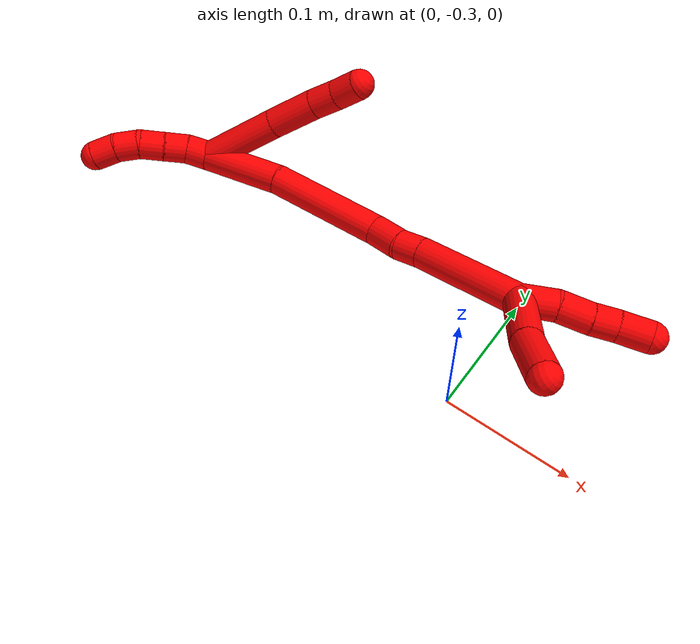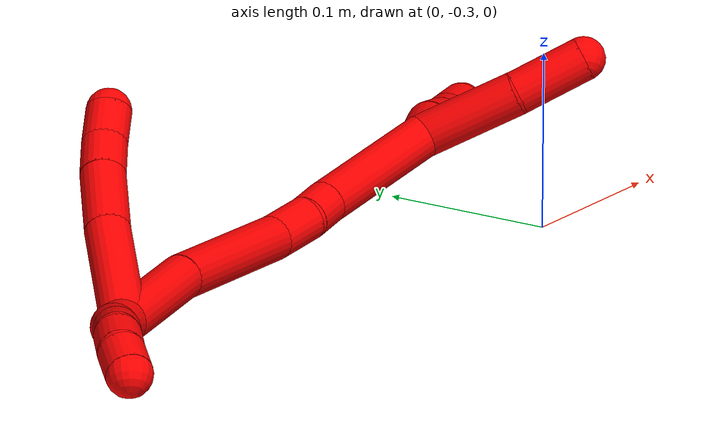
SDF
<sdf version="1.7">
 <world name="default">
  <model name="2">
   <static>0</static>
   <link name="2">
    <collision name="collision-cylinder-e_1_2_8">
     <pose>0.00535 -0.008176 -0.031438 2.88716 0.163224 1.13789</pose>
     <geometry><cylinder><radius>0.0125</radius><length>0.065843</length></cylinder></geometry>
     <surface>
      <friction><ode><mu>1.16</mu><mu2>1.16</mu2><slip1>0</slip1><slip2>0</slip2></ode></friction>
      <contact><ode><kp>1e+06</kp><kd>1</kd><max_vel>0</max_vel><min_depth>0.001</min_depth></ode></contact>
     </surface>
    </collision>
    <visual name="visual-cylinder-e_1_2_8">
     <pose>0.00535 -0.008176 -0.031438 2.88716 0.163224 1.13789</pose>
     <geometry><cylinder><radius>0.0125</radius><length>0.065843</length></cylinder></geometry>
     <material><ambient>1 0 0 1</ambient></material>
    </visual>
    <collision name="collision-cylinder-e_2_8_9">
     <pose>0.014407 -0.020025 -0.082184 2.95359 0.186436 1.56238</pose>
     <geometry><cylinder><radius>0.0125</radius><length>0.040002</length></cylinder></geometry>
     <surface>
      <friction><ode><mu>1.16</mu><mu2>1.16</mu2><slip1>0</slip1><slip2>0</slip2></ode></friction>
      <contact><ode><kp>1e+06</kp><kd>1</kd><max_vel>0</max_vel><min_depth>0.001</min_depth></ode></contact>
     </surface>
    </collision>
    <visual name="visual-cylinder-e_2_8_9">
     <pose>0.014407 -0.020025 -0.082184 2.95359 0.186436 1.56238</pose>
     <geometry><cylinder><radius>0.0125</radius><length>0.040002</length></cylinder></geometry>
     <material><ambient>1 0 0 1</ambient></material>
    </visual>
    <collision name="collision-cylinder-e_3_9_10">
     <pose>0.02077 -0.024757 -0.112299 3.04394 0.239926 2.37132</pose>
     <geometry><cylinder><radius>0.0125</radius><length>0.022357</length></cylinder></geometry>
     <surface>
      <friction><ode><mu>1.16</mu><mu2>1.16</mu2><slip1>0</slip1><slip2>0</slip2></ode></friction>
      <contact><ode><kp>1e+06</kp><kd>1</kd><max_vel>0</max_vel><min_depth>0.001</min_depth></ode></contact>
     </surface>
    </collision>
    <visual name="visual-cylinder-e_3_9_10">
     <pose>0.02077 -0.024757 -0.112299 3.04394 0.239926 2.37132</pose>
     <geometry><cylinder><radius>0.0125</radius><length>0.022357</length></cylinder></geometry>
     <material><ambient>1 0 0 1</ambient></material>
    </visual>
    <collision name="collision-cylinder-e_4_10_6">
     <pose>0.025519 -0.025554 -0.133799 -3.11707 0.19312 -2.88977</pose>
     <geometry><cylinder><radius>0.0125</radius><length>0.021799</length></cylinder></geometry>
     <surface>
      <friction><ode><mu>1.16</mu><mu2>1.16</mu2><slip1>0</slip1><slip2>0</slip2></ode></friction>
      <contact><ode><kp>1e+06</kp><kd>1</kd><max_vel>0</max_vel><min_depth>0.001</min_depth></ode></contact>
     </surface>
    </collision>
    <visual name="visual-cylinder-e_4_10_6">
     <pose>0.025519 -0.025554 -0.133799 -3.11707 0.19312 -2.88977</pose>
     <geometry><cylinder><radius>0.0125</radius><length>0.021799</length></cylinder></geometry>
     <material><ambient>1 0 0 1</ambient></material>
    </visual>
    <collision name="collision-cylinder-e_1_2_11">
     <pose>-0.00798 0.002783 0.005346 -0.479869 -0.923891 0.242413</pose>
     <geometry><cylinder><radius>0.0125</radius><length>0.02</length></cylinder></geometry>
     <surface>
      <friction><ode><mu>1.16</mu><mu2>1.16</mu2><slip1>0</slip1><slip2>0</slip2></ode></friction>
      <contact><ode><kp>1e+06</kp><kd>1</kd><max_vel>0</max_vel><min_depth>0.001</min_depth></ode></contact>
     </surface>
    </collision>
    <visual name="visual-cylinder-e_1_2_11">
     <pose>-0.00798 0.002783 0.005346 -0.479869 -0.923891 0.242413</pose>
     <geometry><cylinder><radius>0.0125</radius><length>0.02</length></cylinder></geometry>
     <material><ambient>1 0 0 1</ambient></material>
    </visual>
    <collision name="collision-cylinder-e_2_11_12">
     <pose>-0.022338 0.011245 0.015894 -0.829417 -0.691702 0.314645</pose>
     <geometry><cylinder><radius>0.0125</radius><length>0.02</length></cylinder></geometry>
     <surface>
      <friction><ode><mu>1.16</mu><mu2>1.16</mu2><slip1>0</slip1><slip2>0</slip2></ode></friction>
      <contact><ode><kp>1e+06</kp><kd>1</kd><max_vel>0</max_vel><min_depth>0.001</min_depth></ode></contact>
     </surface>
    </collision>
    <visual name="visual-cylinder-e_2_11_12">
     <pose>-0.022338 0.011245 0.015894 -0.829417 -0.691702 0.314645</pose>
     <geometry><cylinder><radius>0.0125</radius><length>0.02</length></cylinder></geometry>
     <material><ambient>1 0 0 1</ambient></material>
    </visual>
    <collision name="collision-cylinder-e_3_12_13">
     <pose>-0.035213 0.022025 0.026733 -0.735342 -0.707126 0.28243</pose>
     <geometry><cylinder><radius>0.0125</radius><length>0.02</length></cylinder></geometry>
     <surface>
      <friction><ode><mu>1.16</mu><mu2>1.16</mu2><slip1>0</slip1><slip2>0</slip2></ode></friction>
      <contact><ode><kp>1e+06</kp><kd>1</kd><max_vel>0</max_vel><min_depth>0.001</min_depth></ode></contact>
     </surface>
    </collision>
    <visual name="visual-cylinder-e_3_12_13">
     <pose>-0.035213 0.022025 0.026733 -0.735342 -0.707126 0.28243</pose>
     <geometry><cylinder><radius>0.0125</radius><length>0.02</length></cylinder></geometry>
     <material><ambient>1 0 0 1</ambient></material>
    </visual>
    <collision name="collision-cylinder-e_4_13_14">
     <pose>-0.046274 0.03154 0.040096 -0.519146 -0.474056 0.128129</pose>
     <geometry><cylinder><radius>0.0125</radius><length>0.02</length></cylinder></geometry>
     <surface>
      <friction><ode><mu>1.16</mu><mu2>1.16</mu2><slip1>0</slip1><slip2>0</slip2></ode></friction>
      <contact><ode><kp>1e+06</kp><kd>1</kd><max_vel>0</max_vel><min_depth>0.001</min_depth></ode></contact>
     </surface>
    </collision>
    <visual name="visual-cylinder-e_4_13_14">
     <pose>-0.046274 0.03154 0.040096 -0.519146 -0.474056 0.128129</pose>
     <geometry><cylinder><radius>0.0125</radius><length>0.02</length></cylinder></geometry>
     <material><ambient>1 0 0 1</ambient></material>
    </visual>
    <collision name="collision-cylinder-e_5_14_5">
     <pose>-0.053429 0.040195 0.056499 -0.454532 -0.261953 0.06091</pose>
     <geometry><cylinder><radius>0.0125</radius><length>0.02</length></cylinder></geometry>
     <surface>
      <friction><ode><mu>1.16</mu><mu2>1.16</mu2><slip1>0</slip1><slip2>0</slip2></ode></friction>
      <contact><ode><kp>1e+06</kp><kd>1</kd><max_vel>0</max_vel><min_depth>0.001</min_depth></ode></contact>
     </surface>
    </collision>
    <visual name="visual-cylinder-e_5_14_5">
     <pose>-0.053429 0.040195 0.056499 -0.454532 -0.261953 0.06091</pose>
     <geometry><cylinder><radius>0.0125</radius><length>0.02</length></cylinder></geometry>
     <material><ambient>1 0 0 1</ambient></material>
    </visual>
    <collision name="collision-cylinder-e_1_2_15">
     <pose>0.025585 0.000327 -0.022379 -3.12697 0.852091 -3.10936</pose>
     <geometry><cylinder><radius>0.0125</radius><length>0.067986</length></cylinder></geometry>
     <surface>
      <friction><ode><mu>1.16</mu><mu2>1.16</mu2><slip1>0</slip1><slip2>0</slip2></ode></friction>
      <contact><ode><kp>1e+06</kp><kd>1</kd><max_vel>0</max_vel><min_depth>0.001</min_depth></ode></contact>
     </surface>
    </collision>
    <visual name="visual-cylinder-e_1_2_15">
     <pose>0.025585 0.000327 -0.022379 -3.12697 0.852091 -3.10936</pose>
     <geometry><cylinder><radius>0.0125</radius><length>0.067986</length></cylinder></geometry>
     <material><ambient>1 0 0 1</ambient></material>
    </visual>
    <collision name="collision-cylinder-e_2_15_16">
     <pose>0.090975 0.002819 -0.070872 -3.05891 0.988613 -2.98839</pose>
     <geometry><cylinder><radius>0.0125</radius><length>0.095311</length></cylinder></geometry>
     <surface>
      <friction><ode><mu>1.16</mu><mu2>1.16</mu2><slip1>0</slip1><slip2>0</slip2></ode></friction>
      <contact><ode><kp>1e+06</kp><kd>1</kd><max_vel>0</max_vel><min_depth>0.001</min_depth></ode></contact>
     </surface>
    </collision>
    <visual name="visual-cylinder-e_2_15_16">
     <pose>0.090975 0.002819 -0.070872 -3.05891 0.988613 -2.98839</pose>
     <geometry><cylinder><radius>0.0125</radius><length>0.095311</length></cylinder></geometry>
     <material><ambient>1 0 0 1</ambient></material>
    </visual>
    <collision name="collision-cylinder-e_3_16_17">
     <pose>0.140455 0.00982 -0.1052 -2.60944 0.792799 -1.98723</pose>
     <geometry><cylinder><radius>0.0125</radius><length>0.027164</length></cylinder></geometry>
     <surface>
      <friction><ode><mu>1.16</mu><mu2>1.16</mu2><slip1>0</slip1><slip2>0</slip2></ode></friction>
      <contact><ode><kp>1e+06</kp><kd>1</kd><max_vel>0</max_vel><min_depth>0.001</min_depth></ode></contact>
     </surface>
    </collision>
    <visual name="visual-cylinder-e_3_16_17">
     <pose>0.140455 0.00982 -0.1052 -2.60944 0.792799 -1.98723</pose>
     <geometry><cylinder><radius>0.0125</radius><length>0.027164</length></cylinder></geometry>
     <material><ambient>1 0 0 1</ambient></material>
    </visual>
    <collision name="collision-cylinder-e_4_17_18">
     <pose>0.157346 0.016064 -0.120422 -2.94336 0.79018 -2.67342</pose>
     <geometry><cylinder><radius>0.0125</radius><length>0.020315</length></cylinder></geometry>
     <surface>
      <friction><ode><mu>1.16</mu><mu2>1.16</mu2><slip1>0</slip1><slip2>0</slip2></ode></friction>
      <contact><ode><kp>1e+06</kp><kd>1</kd><max_vel>0</max_vel><min_depth>0.001</min_depth></ode></contact>
     </surface>
    </collision>
    <visual name="visual-cylinder-e_4_17_18">
     <pose>0.157346 0.016064 -0.120422 -2.94336 0.79018 -2.67342</pose>
     <geometry><cylinder><radius>0.0125</radius><length>0.020315</length></cylinder></geometry>
     <material><ambient>1 0 0 1</ambient></material>
    </visual>
    <collision name="collision-cylinder-e_5_18_1">
     <pose>0.196296 0.029373 -0.15644 -2.75228 0.791367 -2.25962</pose>
     <geometry><cylinder><radius>0.0125</radius><length>0.089224</length></cylinder></geometry>
     <surface>
      <friction><ode><mu>1.16</mu><mu2>1.16</mu2><slip1>0</slip1><slip2>0</slip2></ode></friction>
      <contact><ode><kp>1e+06</kp><kd>1</kd><max_vel>0</max_vel><min_depth>0.001</min_depth></ode></contact>
     </surface>
    </collision>
    <visual name="visual-cylinder-e_5_18_1">
     <pose>0.196296 0.029373 -0.15644 -2.75228 0.791367 -2.25962</pose>
     <geometry><cylinder><radius>0.0125</radius><length>0.089224</length></cylinder></geometry>
     <material><ambient>1 0 0 1</ambient></material>
    </visual>
    <collision name="collision-cylinder-e_1_1_19">
     <pose>0.237746 0.03727 -0.194974 2.7435 0.754739 2.20009</pose>
     <geometry><cylinder><radius>0.0125</radius><length>0.028365</length></cylinder></geometry>
     <surface>
      <friction><ode><mu>1.16</mu><mu2>1.16</mu2><slip1>0</slip1><slip2>0</slip2></ode></friction>
      <contact><ode><kp>1e+06</kp><kd>1</kd><max_vel>0</max_vel><min_depth>0.001</min_depth></ode></contact>
     </surface>
    </collision>
    <visual name="visual-cylinder-e_1_1_19">
     <pose>0.237746 0.03727 -0.194974 2.7435 0.754739 2.20009</pose>
     <geometry><cylinder><radius>0.0125</radius><length>0.028365</length></cylinder></geometry>
     <material><ambient>1 0 0 1</ambient></material>
    </visual>
    <collision name="collision-cylinder-e_2_19_20">
     <pose>0.258315 0.030305 -0.211118 2.72108 0.981723 2.38184</pose>
     <geometry><cylinder><radius>0.0125</radius><length>0.026106</length></cylinder></geometry>
     <surface>
      <friction><ode><mu>1.16</mu><mu2>1.16</mu2><slip1>0</slip1><slip2>0</slip2></ode></friction>
      <contact><ode><kp>1e+06</kp><kd>1</kd><max_vel>0</max_vel><min_depth>0.001</min_depth></ode></contact>
     </surface>
    </collision>
    <visual name="visual-cylinder-e_2_19_20">
     <pose>0.258315 0.030305 -0.211118 2.72108 0.981723 2.38184</pose>
     <geometry><cylinder><radius>0.0125</radius><length>0.026106</length></cylinder></geometry>
     <material><ambient>1 0 0 1</ambient></material>
    </visual>
    <collision name="collision-cylinder-e_3_20_21">
     <pose>0.276971 0.02436 -0.223442 2.65954 0.880963 2.18024</pose>
     <geometry><cylinder><radius>0.0125</radius><length>0.020232</length></cylinder></geometry>
     <surface>
      <friction><ode><mu>1.16</mu><mu2>1.16</mu2><slip1>0</slip1><slip2>0</slip2></ode></friction>
      <contact><ode><kp>1e+06</kp><kd>1</kd><max_vel>0</max_vel><min_depth>0.001</min_depth></ode></contact>
     </surface>
    </collision>
    <visual name="visual-cylinder-e_3_20_21">
     <pose>0.276971 0.02436 -0.223442 2.65954 0.880963 2.18024</pose>
     <geometry><cylinder><radius>0.0125</radius><length>0.020232</length></cylinder></geometry>
     <material><ambient>1 0 0 1</ambient></material>
    </visual>
    <collision name="collision-cylinder-e_4_21_4">
     <pose>0.294606 0.01992 -0.23697 2.95774 0.89036 2.75988</pose>
     <geometry><cylinder><radius>0.0125</radius><length>0.025298</length></cylinder></geometry>
     <surface>
      <friction><ode><mu>1.16</mu><mu2>1.16</mu2><slip1>0</slip1><slip2>0</slip2></ode></friction>
      <contact><ode><kp>1e+06</kp><kd>1</kd><max_vel>0</max_vel><min_depth>0.001</min_depth></ode></contact>
     </surface>
    </collision>
    <visual name="visual-cylinder-e_4_21_4">
     <pose>0.294606 0.01992 -0.23697 2.95774 0.89036 2.75988</pose>
     <geometry><cylinder><radius>0.0125</radius><length>0.025298</length></cylinder></geometry>
     <material><ambient>1 0 0 1</ambient></material>
    </visual>
    <collision name="collision-cylinder-e_1_1_22">
     <pose>0.235861 0.068512 -0.192549 -1.82575 0.271393 -0.349751</pose>
     <geometry><cylinder><radius>0.0125</radius><length>0.058433</length></cylinder></geometry>
     <surface>
      <friction><ode><mu>1.16</mu><mu2>1.16</mu2><slip1>0</slip1><slip2>0</slip2></ode></friction>
      <contact><ode><kp>1e+06</kp><kd>1</kd><max_vel>0</max_vel><min_depth>0.001</min_depth></ode></contact>
     </surface>
    </collision>
    <visual name="visual-cylinder-e_1_1_22">
     <pose>0.235861 0.068512 -0.192549 -1.82575 0.271393 -0.349751</pose>
     <geometry><cylinder><radius>0.0125</radius><length>0.058433</length></cylinder></geometry>
     <material><ambient>1 0 0 1</ambient></material>
    </visual>
    <collision name="collision-cylinder-e_2_22_3">
     <pose>0.251114 0.113691 -0.207063 -1.96269 0.365092 -0.538653</pose>
     <geometry><cylinder><radius>0.0125</radius><length>0.041567</length></cylinder></geometry>
     <surface>
      <friction><ode><mu>1.16</mu><mu2>1.16</mu2><slip1>0</slip1><slip2>0</slip2></ode></friction>
      <contact><ode><kp>1e+06</kp><kd>1</kd><max_vel>0</max_vel><min_depth>0.001</min_depth></ode></contact>
     </surface>
    </collision>
    <visual name="visual-cylinder-e_2_22_3">
     <pose>0.251114 0.113691 -0.207063 -1.96269 0.365092 -0.538653</pose>
     <geometry><cylinder><radius>0.0125</radius><length>0.041567</length></cylinder></geometry>
     <material><ambient>1 0 0 1</ambient></material>
    </visual>
    <collision name="collision-sphere-3">
     <pose>0.258535 0.131633 -0.214477 0 -0 0</pose>
     <geometry><sphere><radius>0.0125</radius></sphere></geometry>
     <surface>
      <friction><ode><mu>1.16</mu><mu2>1.16</mu2><slip1>0</slip1><slip2>0</slip2></ode></friction>
      <contact><ode><kp>1e+06</kp><kd>1</kd><max_vel>0</max_vel><min_depth>0.001</min_depth></ode></contact>
     </surface>
    </collision>
    <visual name="visual-sphere-3">
     <pose>0.258535 0.131633 -0.214477 0 -0 0</pose>
     <geometry><sphere><radius>0.0125</radius></sphere></geometry>
     <material><ambient>1 0 0 1</ambient></material>
    </visual>
    <collision name="collision-sphere-22">
     <pose>0.243694 0.095749 -0.199648 0 -0 0</pose>
     <geometry><sphere><radius>0.0125</radius></sphere></geometry>
     <surface>
      <friction><ode><mu>1.16</mu><mu2>1.16</mu2><slip1>0</slip1><slip2>0</slip2></ode></friction>
      <contact><ode><kp>1e+06</kp><kd>1</kd><max_vel>0</max_vel><min_depth>0.001</min_depth></ode></contact>
     </surface>
    </collision>
    <visual name="visual-sphere-22">
     <pose>0.243694 0.095749 -0.199648 0 -0 0</pose>
     <geometry><sphere><radius>0.0125</radius></sphere></geometry>
     <material><ambient>1 0 0 1</ambient></material>
    </visual>
    <collision name="collision-sphere-4">
     <pose>0.304437 0.018465 -0.244794 0 -0 0</pose>
     <geometry><sphere><radius>0.0125</radius></sphere></geometry>
     <surface>
      <friction><ode><mu>1.16</mu><mu2>1.16</mu2><slip1>0</slip1><slip2>0</slip2></ode></friction>
      <contact><ode><kp>1e+06</kp><kd>1</kd><max_vel>0</max_vel><min_depth>0.001</min_depth></ode></contact>
     </surface>
    </collision>
    <visual name="visual-sphere-4">
     <pose>0.304437 0.018465 -0.244794 0 -0 0</pose>
     <geometry><sphere><radius>0.0125</radius></sphere></geometry>
     <material><ambient>1 0 0 1</ambient></material>
    </visual>
    <collision name="collision-sphere-21">
     <pose>0.284774 0.021375 -0.229146 0 -0 0</pose>
     <geometry><sphere><radius>0.0125</radius></sphere></geometry>
     <surface>
      <friction><ode><mu>1.16</mu><mu2>1.16</mu2><slip1>0</slip1><slip2>0</slip2></ode></friction>
      <contact><ode><kp>1e+06</kp><kd>1</kd><max_vel>0</max_vel><min_depth>0.001</min_depth></ode></contact>
     </surface>
    </collision>
    <visual name="visual-sphere-21">
     <pose>0.284774 0.021375 -0.229146 0 -0 0</pose>
     <geometry><sphere><radius>0.0125</radius></sphere></geometry>
     <material><ambient>1 0 0 1</ambient></material>
    </visual>
    <collision name="collision-sphere-20">
     <pose>0.269168 0.027344 -0.217738 0 -0 0</pose>
     <geometry><sphere><radius>0.0125</radius></sphere></geometry>
     <surface>
      <friction><ode><mu>1.16</mu><mu2>1.16</mu2><slip1>0</slip1><slip2>0</slip2></ode></friction>
      <contact><ode><kp>1e+06</kp><kd>1</kd><max_vel>0</max_vel><min_depth>0.001</min_depth></ode></contact>
     </surface>
    </collision>
    <visual name="visual-sphere-20">
     <pose>0.269168 0.027344 -0.217738 0 -0 0</pose>
     <geometry><sphere><radius>0.0125</radius></sphere></geometry>
     <material><ambient>1 0 0 1</ambient></material>
    </visual>
    <collision name="collision-sphere-11">
     <pose>-0.015959 0.005565 0.010693 0 -0 0</pose>
     <geometry><sphere><radius>0.0125</radius></sphere></geometry>
     <surface>
      <friction><ode><mu>1.16</mu><mu2>1.16</mu2><slip1>0</slip1><slip2>0</slip2></ode></friction>
      <contact><ode><kp>1e+06</kp><kd>1</kd><max_vel>0</max_vel><min_depth>0.001</min_depth></ode></contact>
     </surface>
    </collision>
    <visual name="visual-sphere-11">
     <pose>-0.015959 0.005565 0.010693 0 -0 0</pose>
     <geometry><sphere><radius>0.0125</radius></sphere></geometry>
     <material><ambient>1 0 0 1</ambient></material>
    </visual>
    <collision name="collision-sphere-6">
     <pose>0.02761 -0.025291 -0.144492 0 -0 0</pose>
     <geometry><sphere><radius>0.0125</radius></sphere></geometry>
     <surface>
      <friction><ode><mu>1.16</mu><mu2>1.16</mu2><slip1>0</slip1><slip2>0</slip2></ode></friction>
      <contact><ode><kp>1e+06</kp><kd>1</kd><max_vel>0</max_vel><min_depth>0.001</min_depth></ode></contact>
     </surface>
    </collision>
    <visual name="visual-sphere-6">
     <pose>0.02761 -0.025291 -0.144492 0 -0 0</pose>
     <geometry><sphere><radius>0.0125</radius></sphere></geometry>
     <material><ambient>1 0 0 1</ambient></material>
    </visual>
    <collision name="collision-sphere-10">
     <pose>0.023427 -0.025816 -0.123105 0 -0 0</pose>
     <geometry><sphere><radius>0.0125</radius></sphere></geometry>
     <surface>
      <friction><ode><mu>1.16</mu><mu2>1.16</mu2><slip1>0</slip1><slip2>0</slip2></ode></friction>
      <contact><ode><kp>1e+06</kp><kd>1</kd><max_vel>0</max_vel><min_depth>0.001</min_depth></ode></contact>
     </surface>
    </collision>
    <visual name="visual-sphere-10">
     <pose>0.023427 -0.025816 -0.123105 0 -0 0</pose>
     <geometry><sphere><radius>0.0125</radius></sphere></geometry>
     <material><ambient>1 0 0 1</ambient></material>
    </visual>
    <collision name="collision-sphere-9">
     <pose>0.018114 -0.023699 -0.101492 0 -0 0</pose>
     <geometry><sphere><radius>0.0125</radius></sphere></geometry>
     <surface>
      <friction><ode><mu>1.16</mu><mu2>1.16</mu2><slip1>0</slip1><slip2>0</slip2></ode></friction>
      <contact><ode><kp>1e+06</kp><kd>1</kd><max_vel>0</max_vel><min_depth>0.001</min_depth></ode></contact>
     </surface>
    </collision>
    <visual name="visual-sphere-9">
     <pose>0.018114 -0.023699 -0.101492 0 -0 0</pose>
     <geometry><sphere><radius>0.0125</radius></sphere></geometry>
     <material><ambient>1 0 0 1</ambient></material>
    </visual>
    <collision name="collision-sphere-2">
     <geometry><sphere><radius>0.0125</radius></sphere></geometry>
     <surface>
      <friction><ode><mu>1.16</mu><mu2>1.16</mu2><slip1>0</slip1><slip2>0</slip2></ode></friction>
      <contact><ode><kp>1e+06</kp><kd>1</kd><max_vel>0</max_vel><min_depth>0.001</min_depth></ode></contact>
     </surface>
    </collision>
    <visual name="visual-sphere-2">
     <geometry><sphere><radius>0.0125</radius></sphere></geometry>
     <material><ambient>1 0 0 1</ambient></material>
    </visual>
    <collision name="collision-sphere-19">
     <pose>0.247462 0.033265 -0.204497 0 -0 0</pose>
     <geometry><sphere><radius>0.0125</radius></sphere></geometry>
     <surface>
      <friction><ode><mu>1.16</mu><mu2>1.16</mu2><slip1>0</slip1><slip2>0</slip2></ode></friction>
      <contact><ode><kp>1e+06</kp><kd>1</kd><max_vel>0</max_vel><min_depth>0.001</min_depth></ode></contact>
     </surface>
    </collision>
    <visual name="visual-sphere-19">
     <pose>0.247462 0.033265 -0.204497 0 -0 0</pose>
     <geometry><sphere><radius>0.0125</radius></sphere></geometry>
     <material><ambient>1 0 0 1</ambient></material>
    </visual>
    <collision name="collision-sphere-8">
     <pose>0.010699 -0.016352 -0.062876 0 -0 0</pose>
     <geometry><sphere><radius>0.0125</radius></sphere></geometry>
     <surface>
      <friction><ode><mu>1.16</mu><mu2>1.16</mu2><slip1>0</slip1><slip2>0</slip2></ode></friction>
      <contact><ode><kp>1e+06</kp><kd>1</kd><max_vel>0</max_vel><min_depth>0.001</min_depth></ode></contact>
     </surface>
    </collision>
    <visual name="visual-sphere-8">
     <pose>0.010699 -0.016352 -0.062876 0 -0 0</pose>
     <geometry><sphere><radius>0.0125</radius></sphere></geometry>
     <material><ambient>1 0 0 1</ambient></material>
    </visual>
    <collision name="collision-sphere-12">
     <pose>-0.028716 0.016926 0.021095 0 -0 0</pose>
     <geometry><sphere><radius>0.0125</radius></sphere></geometry>
     <surface>
      <friction><ode><mu>1.16</mu><mu2>1.16</mu2><slip1>0</slip1><slip2>0</slip2></ode></friction>
      <contact><ode><kp>1e+06</kp><kd>1</kd><max_vel>0</max_vel><min_depth>0.001</min_depth></ode></contact>
     </surface>
    </collision>
    <visual name="visual-sphere-12">
     <pose>-0.028716 0.016926 0.021095 0 -0 0</pose>
     <geometry><sphere><radius>0.0125</radius></sphere></geometry>
     <material><ambient>1 0 0 1</ambient></material>
    </visual>
    <collision name="collision-sphere-13">
     <pose>-0.041709 0.027125 0.032371 0 -0 0</pose>
     <geometry><sphere><radius>0.0125</radius></sphere></geometry>
     <surface>
      <friction><ode><mu>1.16</mu><mu2>1.16</mu2><slip1>0</slip1><slip2>0</slip2></ode></friction>
      <contact><ode><kp>1e+06</kp><kd>1</kd><max_vel>0</max_vel><min_depth>0.001</min_depth></ode></contact>
     </surface>
    </collision>
    <visual name="visual-sphere-13">
     <pose>-0.041709 0.027125 0.032371 0 -0 0</pose>
     <geometry><sphere><radius>0.0125</radius></sphere></geometry>
     <material><ambient>1 0 0 1</ambient></material>
    </visual>
    <collision name="collision-sphere-14">
     <pose>-0.050839 0.035954 0.047821 0 -0 0</pose>
     <geometry><sphere><radius>0.0125</radius></sphere></geometry>
     <surface>
      <friction><ode><mu>1.16</mu><mu2>1.16</mu2><slip1>0</slip1><slip2>0</slip2></ode></friction>
      <contact><ode><kp>1e+06</kp><kd>1</kd><max_vel>0</max_vel><min_depth>0.001</min_depth></ode></contact>
     </surface>
    </collision>
    <visual name="visual-sphere-14">
     <pose>-0.050839 0.035954 0.047821 0 -0 0</pose>
     <geometry><sphere><radius>0.0125</radius></sphere></geometry>
     <material><ambient>1 0 0 1</ambient></material>
    </visual>
    <collision name="collision-sphere-5">
     <pose>-0.056018 0.044435 0.065177 0 -0 0</pose>
     <geometry><sphere><radius>0.0125</radius></sphere></geometry>
     <surface>
      <friction><ode><mu>1.16</mu><mu2>1.16</mu2><slip1>0</slip1><slip2>0</slip2></ode></friction>
      <contact><ode><kp>1e+06</kp><kd>1</kd><max_vel>0</max_vel><min_depth>0.001</min_depth></ode></contact>
     </surface>
    </collision>
    <visual name="visual-sphere-5">
     <pose>-0.056018 0.044435 0.065177 0 -0 0</pose>
     <geometry><sphere><radius>0.0125</radius></sphere></geometry>
     <material><ambient>1 0 0 1</ambient></material>
    </visual>
    <collision name="collision-sphere-15">
     <pose>0.05117 0.000655 -0.044758 0 -0 0</pose>
     <geometry><sphere><radius>0.0125</radius></sphere></geometry>
     <surface>
      <friction><ode><mu>1.16</mu><mu2>1.16</mu2><slip1>0</slip1><slip2>0</slip2></ode></friction>
      <contact><ode><kp>1e+06</kp><kd>1</kd><max_vel>0</max_vel><min_depth>0.001</min_depth></ode></contact>
     </surface>
    </collision>
    <visual name="visual-sphere-15">
     <pose>0.05117 0.000655 -0.044758 0 -0 0</pose>
     <geometry><sphere><radius>0.0125</radius></sphere></geometry>
     <material><ambient>1 0 0 1</ambient></material>
    </visual>
    <collision name="collision-sphere-16">
     <pose>0.13078 0.004983 -0.096986 0 -0 0</pose>
     <geometry><sphere><radius>0.0125</radius></sphere></geometry>
     <surface>
      <friction><ode><mu>1.16</mu><mu2>1.16</mu2><slip1>0</slip1><slip2>0</slip2></ode></friction>
      <contact><ode><kp>1e+06</kp><kd>1</kd><max_vel>0</max_vel><min_depth>0.001</min_depth></ode></contact>
     </surface>
    </collision>
    <visual name="visual-sphere-16">
     <pose>0.13078 0.004983 -0.096986 0 -0 0</pose>
     <geometry><sphere><radius>0.0125</radius></sphere></geometry>
     <material><ambient>1 0 0 1</ambient></material>
    </visual>
    <collision name="collision-sphere-17">
     <pose>0.15013 0.014656 -0.113414 0 -0 0</pose>
     <geometry><sphere><radius>0.0125</radius></sphere></geometry>
     <surface>
      <friction><ode><mu>1.16</mu><mu2>1.16</mu2><slip1>0</slip1><slip2>0</slip2></ode></friction>
      <contact><ode><kp>1e+06</kp><kd>1</kd><max_vel>0</max_vel><min_depth>0.001</min_depth></ode></contact>
     </surface>
    </collision>
    <visual name="visual-sphere-17">
     <pose>0.15013 0.014656 -0.113414 0 -0 0</pose>
     <geometry><sphere><radius>0.0125</radius></sphere></geometry>
     <material><ambient>1 0 0 1</ambient></material>
    </visual>
    <collision name="collision-sphere-18">
     <pose>0.164563 0.017472 -0.12743 0 -0 0</pose>
     <geometry><sphere><radius>0.0125</radius></sphere></geometry>
     <surface>
      <friction><ode><mu>1.16</mu><mu2>1.16</mu2><slip1>0</slip1><slip2>0</slip2></ode></friction>
      <contact><ode><kp>1e+06</kp><kd>1</kd><max_vel>0</max_vel><min_depth>0.001</min_depth></ode></contact>
     </surface>
    </collision>
    <visual name="visual-sphere-18">
     <pose>0.164563 0.017472 -0.12743 0 -0 0</pose>
     <geometry><sphere><radius>0.0125</radius></sphere></geometry>
     <material><ambient>1 0 0 1</ambient></material>
    </visual>
    <collision name="collision-sphere-1">
     <pose>0.228029 0.041275 -0.185451 0 -0 0</pose>
     <geometry><sphere><radius>0.0125</radius></sphere></geometry>
     <surface>
      <friction><ode><mu>1.16</mu><mu2>1.16</mu2><slip1>0</slip1><slip2>0</slip2></ode></friction>
      <contact><ode><kp>1e+06</kp><kd>1</kd><max_vel>0</max_vel><min_depth>0.001</min_depth></ode></contact>
     </surface>
    </collision>
    <visual name="visual-sphere-1">
     <pose>0.228029 0.041275 -0.185451 0 -0 0</pose>
     <geometry><sphere><radius>0.0125</radius></sphere></geometry>
     <material><ambient>1 0 0 1</ambient></material>
    </visual>
    <inertial>
     <pose>0.11246 0.019713 -0.102463 0 -0 0</pose>
     <mass>0.75</mass>
     <inertia>
      <ixx>-5e-05</ixx>
      <ixy>0</ixy>
      <ixz>0</ixz>
      <iyy>0.000154</iyy>
      <iyz>0</iyz>
      <izz>-0.000216</izz>
     </inertia>
    </inertial>
   </link>
   <pose>-0.290096 -0.228204 0.012498 2.58039 0.581506 -0.177364</pose>
  </model>
 </world>
</sdf>
